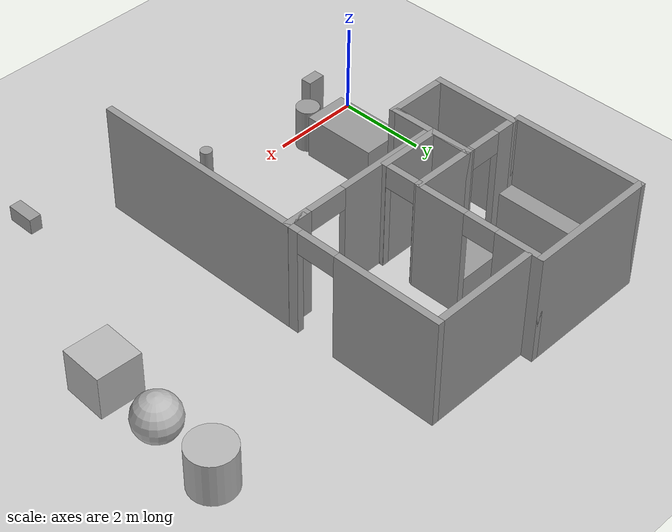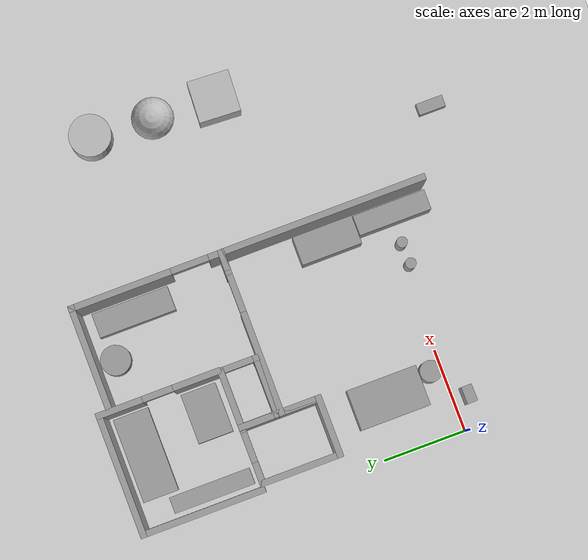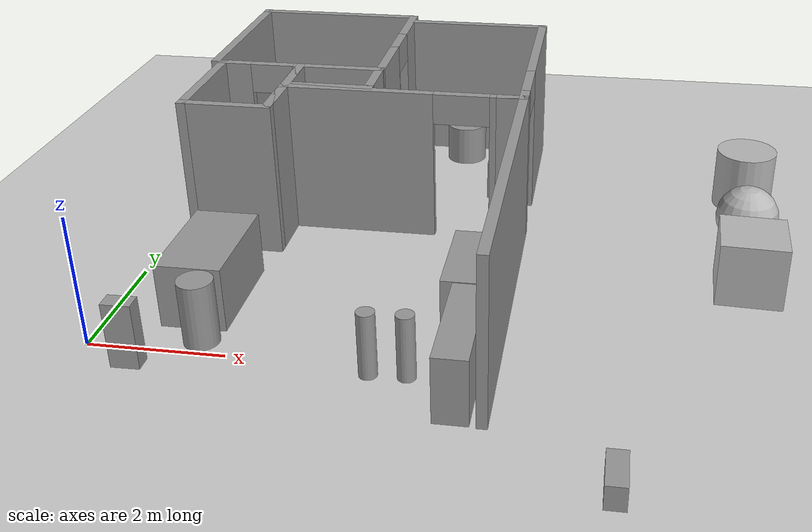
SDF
<sdf version="1.6">
 <world name="default">
  <model name="ground_plane">
   <static>1</static>
   <link name="link">
    <collision name="collision">
     <geometry><plane><normal>0 0 1</normal><size>100 100</size></plane></geometry>
     <surface><friction><ode><mu>100</mu><mu2>50</mu2></ode></friction></surface>
    </collision>
    <visual name="visual">
     <cast_shadows>0</cast_shadows>
     <geometry><plane><normal>0 0 1</normal><size>100 100</size></plane></geometry>
     <material>
      <script><uri>file://media/materials/scripts/gazebo.material</uri><name>Gazebo/Grey</name></script>
     </material>
    </visual>
   </link>
  </model>
  <model name="cma_L5">
   <pose>3.77502 1.45512 0 0 -0 0</pose>
   <link name="Wall_0">
    <collision name="Wall_0_Collision">
     <geometry><box><size>1 0.15 2.5</size></box></geometry>
     <pose>0 0 1.25 0 -0 0</pose>
    </collision>
    <visual name="Wall_0_Visual">
     <pose>0 0 1.25 0 -0 0</pose>
     <geometry><box><size>1 0.15 2.5</size></box></geometry>
     <material>
      <script><uri>file://media/materials/scripts/gazebo.material</uri><name>Gazebo/Grey</name></script>
      <ambient>1 1 1 1</ambient>
     </material>
    </visual>
    <pose>-1.925 2 0 0 -0 1.5708</pose>
   </link>
   <link name="Wall_1">
    <pose>0 2.425 0 0 -0 0</pose>
    <visual name="Wall_1_Visual_0">
     <pose>-0.7525 0 1.25 0 -0 0</pose>
     <geometry><box><size>2.495 0.15 2.5</size></box></geometry>
     <material>
      <script><uri>file://media/materials/scripts/gazebo.material</uri><name>Gazebo/Grey</name></script>
      <ambient>1 1 1 1</ambient>
     </material>
    </visual>
    <collision name="Wall_1_Collision_0">
     <geometry><box><size>2.495 0.15 2.5</size></box></geometry>
     <pose>-0.7525 0 1.25 0 -0 0</pose>
    </collision>
    <visual name="Wall_1_Visual_1">
     <pose>1.6975 0 1.25 0 -0 0</pose>
     <geometry><box><size>0.605 0.15 2.5</size></box></geometry>
     <material>
      <script><uri>file://media/materials/scripts/gazebo.material</uri><name>Gazebo/Grey</name></script>
      <ambient>1 1 1 1</ambient>
     </material>
    </visual>
    <collision name="Wall_1_Collision_1">
     <geometry><box><size>0.605 0.15 2.5</size></box></geometry>
     <pose>1.6975 0 1.25 0 -0 0</pose>
    </collision>
    <visual name="Wall_1_Visual_2">
     <pose>0.945 0 2.25 0 -0 0</pose>
     <geometry><box><size>0.9 0.15 0.5</size></box></geometry>
     <material>
      <script><uri>file://media/materials/scripts/gazebo.material</uri><name>Gazebo/Grey</name></script>
      <ambient>1 1 1 1</ambient>
     </material>
    </visual>
    <collision name="Wall_1_Collision_2">
     <geometry><box><size>0.9 0.15 0.5</size></box></geometry>
     <pose>0.945 0 2.25 0 -0 0</pose>
    </collision>
   </link>
   <link name="Wall_3">
    <collision name="Wall_3_Collision">
     <geometry><box><size>5 0.15 2.5</size></box></geometry>
     <pose>0 0 1.25 0 -0 0</pose>
    </collision>
    <visual name="Wall_3_Visual">
     <pose>0 0 1.25 0 -0 0</pose>
     <geometry><box><size>5 0.15 2.5</size></box></geometry>
     <material>
      <script><uri>file://media/materials/scripts/gazebo.material</uri><name>Gazebo/Grey</name></script>
      <ambient>1 1 1 1</ambient>
     </material>
    </visual>
    <pose>1.925 0 0 0 0 -1.5708</pose>
   </link>
   <static>1</static>
  </model>
  <model name="cma_dispensa">
   <pose>2.52584 4.40119 0 0 -0 0</pose>
   <link name="Wall_5">
    <collision name="Wall_5_Collision">
     <geometry><box><size>1 0.15 2.5</size></box></geometry>
     <pose>0 0 1.25 0 -0 0</pose>
    </collision>
    <visual name="Wall_5_Visual">
     <pose>0 0 1.25 0 -0 0</pose>
     <geometry><box><size>1 0.15 2.5</size></box></geometry>
     <material>
      <script><uri>file://media/materials/scripts/gazebo.material</uri><name>Gazebo/Grey</name></script>
      <ambient>1 1 1 1</ambient>
     </material>
    </visual>
    <pose>-0.675 0 0 0 -0 1.5708</pose>
   </link>
   <link name="Wall_6">
    <collision name="Wall_6_Collision">
     <geometry><box><size>1.5 0.15 2.5</size></box></geometry>
     <pose>0 0 1.25 0 -0 0</pose>
    </collision>
    <visual name="Wall_6_Visual">
     <pose>0 0 1.25 0 -0 0</pose>
     <geometry><box><size>1.5 0.15 2.5</size></box></geometry>
     <material>
      <script><uri>file://media/materials/scripts/gazebo.material</uri><name>Gazebo/Grey</name></script>
      <ambient>1 1 1 1</ambient>
     </material>
    </visual>
    <pose>0 0.425 0 0 -0 0</pose>
   </link>
   <link name="Wall_7">
    <pose>0.675 0 0 0 0 -1.5708</pose>
    <visual name="Wall_7_Visual_0">
     <pose>-0.4275 0 1.25 0 -0 0</pose>
     <geometry><box><size>0.145 0.15 2.5</size></box></geometry>
     <material>
      <script><uri>file://media/materials/scripts/gazebo.material</uri><name>Gazebo/Grey</name></script>
      <ambient>1 1 1 1</ambient>
     </material>
    </visual>
    <collision name="Wall_7_Collision_0">
     <geometry><box><size>0.145 0.15 2.5</size></box></geometry>
     <pose>-0.4275 0 1.25 0 -0 0</pose>
    </collision>
    <visual name="Wall_7_Visual_1">
     <pose>0.4225 0 1.25 0 -0 0</pose>
     <geometry><box><size>0.155 0.15 2.5</size></box></geometry>
     <material>
      <script><uri>file://media/materials/scripts/gazebo.material</uri><name>Gazebo/Grey</name></script>
      <ambient>1 1 1 1</ambient>
     </material>
    </visual>
    <collision name="Wall_7_Collision_1">
     <geometry><box><size>0.155 0.15 2.5</size></box></geometry>
     <pose>0.4225 0 1.25 0 -0 0</pose>
    </collision>
    <visual name="Wall_7_Visual_2">
     <pose>-0.005 0 2.25 0 -0 0</pose>
     <geometry><box><size>0.7 0.15 0.5</size></box></geometry>
     <material>
      <script><uri>file://media/materials/scripts/gazebo.material</uri><name>Gazebo/Grey</name></script>
      <ambient>1 1 1 1</ambient>
     </material>
    </visual>
    <collision name="Wall_7_Collision_2">
     <geometry><box><size>0.7 0.15 0.5</size></box></geometry>
     <pose>-0.005 0 2.25 0 -0 0</pose>
    </collision>
   </link>
   <link name="Wall_8">
    <collision name="Wall_8_Collision">
     <geometry><box><size>1.5 0.15 2.5</size></box></geometry>
     <pose>0 0 1.25 0 -0 0</pose>
    </collision>
    <visual name="Wall_8_Visual">
     <pose>0 0 1.25 0 -0 0</pose>
     <geometry><box><size>1.5 0.15 2.5</size></box></geometry>
     <material>
      <script><uri>file://media/materials/scripts/gazebo.material</uri><name>Gazebo/Grey</name></script>
      <ambient>1 1 1 1</ambient>
     </material>
    </visual>
    <pose>0 -0.425 0 0 -0 3.14159</pose>
   </link>
   <static>1</static>
  </model>
  <model name="cma_banheiro_e">
   <pose>1.18358 3.89879 0 0 -0 0</pose>
   <link name="Wall_10">
    <collision name="Wall_10_Collision">
     <geometry><box><size>1.5 0.15 2.5</size></box></geometry>
     <pose>0 0 1.25 0 -0 0</pose>
    </collision>
    <visual name="Wall_10_Visual">
     <pose>0 0 1.25 0 -0 0</pose>
     <geometry><box><size>1.5 0.15 2.5</size></box></geometry>
     <material>
      <script><uri>file://media/materials/scripts/gazebo.material</uri><name>Gazebo/Grey</name></script>
      <ambient>1 1 1 1</ambient>
     </material>
    </visual>
    <pose>0 -0.925 0 0 -0 3.14159</pose>
   </link>
   <link name="Wall_11">
    <collision name="Wall_11_Collision">
     <geometry><box><size>2 0.15 2.5</size></box></geometry>
     <pose>0 0 1.25 0 -0 0</pose>
    </collision>
    <visual name="Wall_11_Visual">
     <pose>0 0 1.25 0 -0 0</pose>
     <geometry><box><size>2 0.15 2.5</size></box></geometry>
     <material>
      <script><uri>file://media/materials/scripts/gazebo.material</uri><name>Gazebo/Grey</name></script>
      <ambient>1 1 1 1</ambient>
     </material>
    </visual>
    <pose>-0.675 0 0 0 -0 1.5708</pose>
   </link>
   <link name="Wall_12">
    <pose>0 0.925 0 0 -0 0</pose>
    <visual name="Wall_12_Visual_0">
     <pose>-0.4625 0 1.25 0 -0 0</pose>
     <geometry><box><size>0.575 0.15 2.5</size></box></geometry>
     <material>
      <script><uri>file://media/materials/scripts/gazebo.material</uri><name>Gazebo/Grey</name></script>
      <ambient>1 1 1 1</ambient>
     </material>
    </visual>
    <collision name="Wall_12_Collision_0">
     <geometry><box><size>0.575 0.15 2.5</size></box></geometry>
     <pose>-0.4625 0 1.25 0 -0 0</pose>
    </collision>
    <visual name="Wall_12_Visual_1">
     <pose>0.6475 0 1.25 0 -0 0</pose>
     <geometry><box><size>0.205 0.15 2.5</size></box></geometry>
     <material>
      <script><uri>file://media/materials/scripts/gazebo.material</uri><name>Gazebo/Grey</name></script>
      <ambient>1 1 1 1</ambient>
     </material>
    </visual>
    <collision name="Wall_12_Collision_1">
     <geometry><box><size>0.205 0.15 2.5</size></box></geometry>
     <pose>0.6475 0 1.25 0 -0 0</pose>
    </collision>
    <visual name="Wall_12_Visual_2">
     <pose>0.185 0 2.25 0 -0 0</pose>
     <geometry><box><size>0.72 0.15 0.5</size></box></geometry>
     <material>
      <script><uri>file://media/materials/scripts/gazebo.material</uri><name>Gazebo/Grey</name></script>
      <ambient>1 1 1 1</ambient>
     </material>
    </visual>
    <collision name="Wall_12_Collision_2">
     <geometry><box><size>0.72 0.15 0.5</size></box></geometry>
     <pose>0.185 0 2.25 0 -0 0</pose>
    </collision>
   </link>
   <link name="Wall_13">
    <collision name="Wall_13_Collision">
     <geometry><box><size>2 0.15 2.5</size></box></geometry>
     <pose>0 0 1.25 0 -0 0</pose>
    </collision>
    <visual name="Wall_13_Visual">
     <pose>0 0 1.25 0 -0 0</pose>
     <geometry><box><size>2 0.15 2.5</size></box></geometry>
     <material>
      <script><uri>file://media/materials/scripts/gazebo.material</uri><name>Gazebo/Grey</name></script>
      <ambient>1 1 1 1</ambient>
     </material>
    </visual>
    <pose>0.675 0 0 0 0 -1.5708</pose>
   </link>
   <static>1</static>
  </model>
  <model name="cma_qe">
   <pose>1.79561 6.31228 0 0 -0 0</pose>
   <link name="Wall_15">
    <collision name="Wall_15_Collision">
     <geometry><box><size>3 0.15 2.5</size></box></geometry>
     <pose>0 0 1.25 0 -0 0</pose>
    </collision>
    <visual name="Wall_15_Visual">
     <pose>0 0 1.25 0 -0 0</pose>
     <geometry><box><size>3 0.15 2.5</size></box></geometry>
     <material>
      <script><uri>file://media/materials/scripts/gazebo.material</uri><name>Gazebo/Grey</name></script>
      <ambient>1 1 1 1</ambient>
     </material>
    </visual>
    <pose>-1.425 0 0 0 -0 1.5708</pose>
   </link>
   <link name="Wall_16">
    <collision name="Wall_16_Collision">
     <geometry><box><size>3 0.15 2.5</size></box></geometry>
     <pose>0 0 1.25 0 -0 0</pose>
    </collision>
    <visual name="Wall_16_Visual">
     <pose>0 0 1.25 0 -0 0</pose>
     <geometry><box><size>3 0.15 2.5</size></box></geometry>
     <material>
      <script><uri>file://media/materials/scripts/gazebo.material</uri><name>Gazebo/Grey</name></script>
      <ambient>1 1 1 1</ambient>
     </material>
    </visual>
    <pose>0 1.425 0 0 -0 0</pose>
   </link>
   <link name="Wall_17">
    <pose>1.425 0 0 0 0 -1.5708</pose>
    <visual name="Wall_17_Visual_0">
     <pose>-0.945 0 1.25 0 -0 0</pose>
     <geometry><box><size>1.11 0.15 2.5</size></box></geometry>
     <material>
      <script><uri>file://media/materials/scripts/gazebo.material</uri><name>Gazebo/Grey</name></script>
      <ambient>1 1 1 1</ambient>
     </material>
    </visual>
    <collision name="Wall_17_Collision_0">
     <geometry><box><size>1.11 0.15 2.5</size></box></geometry>
     <pose>-0.945 0 1.25 0 -0 0</pose>
    </collision>
    <visual name="Wall_17_Visual_1">
     <pose>0.92 0 1.25 0 -0 0</pose>
     <geometry><box><size>1.16 0.15 2.5</size></box></geometry>
     <material>
      <script><uri>file://media/materials/scripts/gazebo.material</uri><name>Gazebo/Grey</name></script>
      <ambient>1 1 1 1</ambient>
     </material>
    </visual>
    <collision name="Wall_17_Collision_1">
     <geometry><box><size>1.16 0.15 2.5</size></box></geometry>
     <pose>0.92 0 1.25 0 -0 0</pose>
    </collision>
    <visual name="Wall_17_Visual_2">
     <pose>-0.025 0 2.25 0 -0 0</pose>
     <geometry><box><size>0.73 0.15 0.5</size></box></geometry>
     <material>
      <script><uri>file://media/materials/scripts/gazebo.material</uri><name>Gazebo/Grey</name></script>
      <ambient>1 1 1 1</ambient>
     </material>
    </visual>
    <collision name="Wall_17_Collision_2">
     <geometry><box><size>0.73 0.15 0.5</size></box></geometry>
     <pose>-0.025 0 2.25 0 -0 0</pose>
    </collision>
   </link>
   <static>1</static>
  </model>
  <model name="cma_area2">
   <pose>4.52275 5.67862 0 0 -0 0</pose>
   <link name="Wall_23">
    <collision name="Wall_23_Collision">
     <geometry><box><size>2.5 0.15 2.5</size></box></geometry>
     <pose>0 0 1.25 0 -0 0</pose>
    </collision>
    <visual name="Wall_23_Visual">
     <pose>0 0 1.25 0 -0 0</pose>
     <geometry><box><size>2.5 0.15 2.5</size></box></geometry>
     <material>
      <script><uri>file://media/materials/scripts/gazebo.material</uri><name>Gazebo/Grey</name></script>
      <ambient>1 1 1 1</ambient>
     </material>
    </visual>
    <pose>0 1.8 0 0 -0 0</pose>
   </link>
   <link name="Wall_24">
    <pose>1.175 0 0 0 0 -1.5708</pose>
    <visual name="Wall_24_Visual_0">
     <pose>-0.6425 0 1.25 0 -0 0</pose>
     <geometry><box><size>2.465 0.15 2.5</size></box></geometry>
     <material>
      <script><uri>file://media/materials/scripts/gazebo.material</uri><name>Gazebo/Grey</name></script>
      <ambient>1 1 1 1</ambient>
     </material>
    </visual>
    <collision name="Wall_24_Collision_0">
     <geometry><box><size>2.465 0.15 2.5</size></box></geometry>
     <pose>-0.6425 0 1.25 0 -0 0</pose>
    </collision>
    <visual name="Wall_24_Visual_1">
     <pose>1.6825 0 1.25 0 -0 0</pose>
     <geometry><box><size>0.385 0.15 2.5</size></box></geometry>
     <material>
      <script><uri>file://media/materials/scripts/gazebo.material</uri><name>Gazebo/Grey</name></script>
      <ambient>1 1 1 1</ambient>
     </material>
    </visual>
    <collision name="Wall_24_Collision_1">
     <geometry><box><size>0.385 0.15 2.5</size></box></geometry>
     <pose>1.6825 0 1.25 0 -0 0</pose>
    </collision>
    <visual name="Wall_24_Visual_2">
     <pose>1.04 0 2.25 0 -0 0</pose>
     <geometry><box><size>0.9 0.15 0.5</size></box></geometry>
     <material>
      <script><uri>file://media/materials/scripts/gazebo.material</uri><name>Gazebo/Grey</name></script>
      <ambient>1 1 1 1</ambient>
     </material>
    </visual>
    <collision name="Wall_24_Collision_2">
     <geometry><box><size>0.9 0.15 0.5</size></box></geometry>
     <pose>1.04 0 2.25 0 -0 0</pose>
    </collision>
   </link>
   <link name="Wall_25">
    <collision name="Wall_25_Collision">
     <geometry><box><size>0.5 0.15 2.5</size></box></geometry>
     <pose>0 0 1.25 0 -0 0</pose>
    </collision>
    <visual name="Wall_25_Visual">
     <pose>0 0 1.25 0 -0 0</pose>
     <geometry><box><size>0.5 0.15 2.5</size></box></geometry>
     <material>
      <script><uri>file://media/materials/scripts/gazebo.material</uri><name>Gazebo/Grey</name></script>
      <ambient>1 1 1 1</ambient>
     </material>
    </visual>
    <pose>1 -1.8 0 0 -0 3.14159</pose>
   </link>
   <static>1</static>
  </model>
  <model name="cma_picador_0">
   <link name="link_2">
    <pose>-0.7258 -1.69104 0 0 -0 0</pose>
    <inertial>
     <mass>0.104732</mass>
     <inertia>
      <ixx>0.00927906</ixx>
      <ixy>0</ixy>
      <ixz>0</ixz>
      <iyy>0.010243</iyy>
      <iyz>0</iyz>
      <izz>0.00206672</izz>
     </inertia>
    </inertial>
    <visual name="visual">
     <geometry><box><size>0.416688 0.25134 1</size></box></geometry>
     <material>
      <lighting>1</lighting>
      <script><uri>file://media/materials/scripts/gazebo.material</uri><name>Gazebo/Grey</name></script>
      <ambient>0.3 0.3 0.3 1</ambient>
      <diffuse>0.7 0.7 0.7 1</diffuse>
      <specular>0.01 0.01 0.01 1</specular>
      <emissive>0 0 0 1</emissive>
     </material>
    </visual>
    <collision name="collision">
     <geometry><box><size>0.416688 0.25134 1</size></box></geometry>
     <surface>
      <friction>
       <ode><mu>1</mu><mu2>1</mu2><fdir1>0 0 0</fdir1><slip1>0</slip1><slip2>0</slip2></ode>
       <torsional>
        <coefficient>1</coefficient>
        <patch_radius>0</patch_radius>
        <surface_radius>0</surface_radius>
        <use_patch_radius>1</use_patch_radius>
        <ode><slip>0</slip></ode>
       </torsional>
      </friction>
      <bounce><restitution_coefficient>0</restitution_coefficient><threshold>1e+06</threshold></bounce>
      <contact>
       <collide_without_contact>0</collide_without_contact>
       <collide_without_contact_bitmask>1</collide_without_contact_bitmask>
       <collide_bitmask>1</collide_bitmask>
       <ode>
        <soft_cfm>0</soft_cfm>
        <soft_erp>0.2</soft_erp>
        <kp>1e+13</kp>
        <kd>1</kd>
        <max_vel>0.01</max_vel>
        <min_depth>0</min_depth>
       </ode>
       <bullet>
        <split_impulse>1</split_impulse>
        <split_impulse_penetration_threshold>-0.01</split_impulse_penetration_threshold>
        <soft_cfm>0</soft_cfm>
        <soft_erp>0.2</soft_erp>
        <kp>1e+13</kp>
        <kd>1</kd>
       </bullet>
      </contact>
     </surface>
    </collision>
   </link>
   <static>0</static>
   <pose>1.46242 1.36386 0.500006 2e-06 -4e-06 0.014625</pose>
  </model>
  <model name="cma_cesto">
   <link name="link_1">
    <pose>-0.329659 -1.55494 0 0 -0 0</pose>
    <inertial>
     <mass>0.267897</mass>
     <inertia>
      <ixx>0.0268102</ixx>
      <ixy>0</ixy>
      <ixz>0</ixz>
      <iyy>0.0268102</iyy>
      <iyz>0</iyz>
      <izz>0.00897111</izz>
     </inertia>
    </inertial>
    <visual name="visual">
     <geometry><cylinder><radius>0.258792</radius><length>1</length></cylinder></geometry>
     <material>
      <lighting>1</lighting>
      <script><uri>file://media/materials/scripts/gazebo.material</uri><name>Gazebo/Grey</name></script>
      <ambient>0.3 0.3 0.3 1</ambient>
      <diffuse>0.7 0.7 0.7 1</diffuse>
      <specular>0.01 0.01 0.01 1</specular>
      <emissive>0 0 0 1</emissive>
     </material>
    </visual>
    <collision name="collision">
     <geometry><cylinder><radius>0.258792</radius><length>1</length></cylinder></geometry>
     <surface>
      <friction>
       <ode><mu>1</mu><mu2>1</mu2><fdir1>0 0 0</fdir1><slip1>0</slip1><slip2>0</slip2></ode>
       <torsional>
        <coefficient>1</coefficient>
        <patch_radius>0</patch_radius>
        <surface_radius>0</surface_radius>
        <use_patch_radius>1</use_patch_radius>
        <ode><slip>0</slip></ode>
       </torsional>
      </friction>
      <bounce><restitution_coefficient>0</restitution_coefficient><threshold>1e+06</threshold></bounce>
      <contact>
       <collide_without_contact>0</collide_without_contact>
       <collide_without_contact_bitmask>1</collide_without_contact_bitmask>
       <collide_bitmask>1</collide_bitmask>
       <ode>
        <soft_cfm>0</soft_cfm>
        <soft_erp>0.2</soft_erp>
        <kp>1e+13</kp>
        <kd>1</kd>
        <max_vel>0.01</max_vel>
        <min_depth>0</min_depth>
       </ode>
       <bullet>
        <split_impulse>1</split_impulse>
        <split_impulse_penetration_threshold>-0.01</split_impulse_penetration_threshold>
        <soft_cfm>0</soft_cfm>
        <soft_erp>0.2</soft_erp>
        <kp>1e+13</kp>
        <kd>1</kd>
       </bullet>
      </contact>
     </surface>
    </collision>
   </link>
   <static>0</static>
   <pose>1.91097 1.85863 0.499991 0 0 -0.013205</pose>
  </model>
  <model name="cma_sofa_2_lugares">
   <link name="link_0">
    <pose>-0.034013 -0.039828 0 0 -0 0</pose>
    <inertial>
     <mass>1.66071</mass>
     <inertia>
      <ixx>0.538183</ixx>
      <ixy>0</ixy>
      <ixz>0</ixz>
      <iyy>0.270519</iyy>
      <iyz>0</iyz>
      <izz>0.531915</izz>
     </inertia>
    </inertial>
    <visual name="visual">
     <geometry><box><size>0.977147 1.69968 1</size></box></geometry>
     <material>
      <lighting>1</lighting>
      <script><uri>file://media/materials/scripts/gazebo.material</uri><name>Gazebo/Grey</name></script>
      <ambient>0.3 0.3 0.3 1</ambient>
      <diffuse>0.7 0.7 0.7 1</diffuse>
      <specular>0.01 0.01 0.01 1</specular>
      <emissive>0 0 0 1</emissive>
     </material>
    </visual>
    <collision name="collision">
     <geometry><box><size>0.977147 1.69968 1</size></box></geometry>
     <surface>
      <friction>
       <ode><mu>1</mu><mu2>1</mu2><fdir1>0 0 0</fdir1><slip1>0</slip1><slip2>0</slip2></ode>
       <torsional>
        <coefficient>1</coefficient>
        <patch_radius>0</patch_radius>
        <surface_radius>0</surface_radius>
        <use_patch_radius>1</use_patch_radius>
        <ode><slip>0</slip></ode>
       </torsional>
      </friction>
      <bounce><restitution_coefficient>0</restitution_coefficient><threshold>1e+06</threshold></bounce>
      <contact>
       <collide_without_contact>0</collide_without_contact>
       <collide_without_contact_bitmask>1</collide_without_contact_bitmask>
       <collide_bitmask>1</collide_bitmask>
       <ode>
        <soft_cfm>0</soft_cfm>
        <soft_erp>0.2</soft_erp>
        <kp>1e+13</kp>
        <kd>1</kd>
        <max_vel>0.01</max_vel>
        <min_depth>0</min_depth>
       </ode>
       <bullet>
        <split_impulse>1</split_impulse>
        <split_impulse_penetration_threshold>-0.01</split_impulse_penetration_threshold>
        <soft_cfm>0</soft_cfm>
        <soft_erp>0.2</soft_erp>
        <kp>1e+13</kp>
        <kd>1</kd>
       </bullet>
      </contact>
     </surface>
    </collision>
   </link>
   <static>0</static>
   <pose>1.36372 1.47269 0.499998 4e-06 1e-06 -0.000592</pose>
  </model>
  <model name="cma_barra_70cmV">
   <link name="link_2">
    <pose>0.076239 -1e-06 0 0 0 -1.5756</pose>
    <inertial>
     <mass>0.0631368</mass>
     <inertia>
      <ixx>0.00106542</ixx>
      <ixy>0</ixy>
      <ixz>0</ixz>
      <iyy>0.00284727</iyy>
      <iyz>0</iyz>
      <izz>0.0025815</izz>
     </inertia>
    </inertial>
    <visual name="visual">
     <geometry><box><size>0.643938 0.275728 0.355737</size></box></geometry>
     <material>
      <lighting>1</lighting>
      <script><uri>file://media/materials/scripts/gazebo.material</uri><name>Gazebo/Grey</name></script>
      <ambient>0.3 0.3 0.3 1</ambient>
      <diffuse>0.7 0.7 0.7 1</diffuse>
      <specular>0.01 0.01 0.01 1</specular>
      <emissive>0 0 0 1</emissive>
     </material>
    </visual>
    <collision name="collision">
     <geometry><box><size>0.643938 0.275728 0.355737</size></box></geometry>
     <surface>
      <friction>
       <ode><mu>1</mu><mu2>1</mu2><fdir1>0 0 0</fdir1><slip1>0</slip1><slip2>0</slip2></ode>
       <torsional>
        <coefficient>1</coefficient>
        <patch_radius>0</patch_radius>
        <surface_radius>0</surface_radius>
        <use_patch_radius>1</use_patch_radius>
        <ode><slip>0</slip></ode>
       </torsional>
      </friction>
      <bounce><restitution_coefficient>0</restitution_coefficient><threshold>1e+06</threshold></bounce>
      <contact>
       <collide_without_contact>0</collide_without_contact>
       <collide_without_contact_bitmask>1</collide_without_contact_bitmask>
       <collide_bitmask>1</collide_bitmask>
       <ode>
        <soft_cfm>0</soft_cfm>
        <soft_erp>0.2</soft_erp>
        <kp>1e+13</kp>
        <kd>1</kd>
        <max_vel>0.01</max_vel>
        <min_depth>0</min_depth>
       </ode>
       <bullet>
        <split_impulse>1</split_impulse>
        <split_impulse_penetration_threshold>-0.01</split_impulse_penetration_threshold>
        <soft_cfm>0</soft_cfm>
        <soft_erp>0.2</soft_erp>
        <kp>1e+13</kp>
        <kd>1</kd>
       </bullet>
      </contact>
     </surface>
    </collision>
   </link>
   <static>0</static>
   <pose>7.29521 -1.9242 0.177866 -3e-06 2.2e-05 0.001499</pose>
  </model>
  <model name="cma_geladeira">
   <link name="link_2">
    <pose>3e-06 -4e-06 0 0 -0 0</pose>
    <inertial>
     <mass>0.994085</mass>
     <inertia>
      <ixx>0.258405</ixx>
      <ixy>0</ixy>
      <ixz>0</ixz>
      <iyy>0.121468</iyy>
      <iyz>0</iyz>
      <izz>0.214192</izz>
     </inertia>
    </inertial>
    <visual name="visual">
     <geometry><box><size>0.682844 1.45579 1</size></box></geometry>
     <material>
      <lighting>1</lighting>
      <script><uri>file://media/materials/scripts/gazebo.material</uri><name>Gazebo/Grey</name></script>
      <ambient>0.3 0.3 0.3 1</ambient>
      <diffuse>0.7 0.7 0.7 1</diffuse>
      <specular>0.01 0.01 0.01 1</specular>
      <emissive>0 0 0 1</emissive>
     </material>
    </visual>
    <collision name="collision">
     <geometry><box><size>0.682844 1.45579 1</size></box></geometry>
     <surface>
      <friction>
       <ode><mu>1</mu><mu2>1</mu2><fdir1>0 0 0</fdir1><slip1>0</slip1><slip2>0</slip2></ode>
       <torsional>
        <coefficient>1</coefficient>
        <patch_radius>0</patch_radius>
        <surface_radius>0</surface_radius>
        <use_patch_radius>1</use_patch_radius>
        <ode><slip>0</slip></ode>
       </torsional>
      </friction>
      <bounce><restitution_coefficient>0</restitution_coefficient><threshold>1e+06</threshold></bounce>
      <contact>
       <collide_without_contact>0</collide_without_contact>
       <collide_without_contact_bitmask>1</collide_without_contact_bitmask>
       <collide_bitmask>1</collide_bitmask>
       <ode>
        <soft_cfm>0</soft_cfm>
        <soft_erp>0.2</soft_erp>
        <kp>1e+13</kp>
        <kd>1</kd>
        <max_vel>0.01</max_vel>
        <min_depth>0</min_depth>
       </ode>
       <bullet>
        <split_impulse>1</split_impulse>
        <split_impulse_penetration_threshold>-0.01</split_impulse_penetration_threshold>
        <soft_cfm>0</soft_cfm>
        <soft_erp>0.2</soft_erp>
        <kp>1e+13</kp>
        <kd>1</kd>
       </bullet>
      </contact>
     </surface>
    </collision>
   </link>
   <static>0</static>
   <pose>5.2196 1.47717 0.499997 -2e-06 -5e-06 -7e-06</pose>
  </model>
  <model name="cma_armario_coz_190x40cm">
   <link name="link_3">
    <pose>-3e-06 1e-06 0 0 -0 0</pose>
    <inertial>
     <mass>0.848618</mass>
     <inertia>
      <ixx>0.28876</ixx>
      <ixy>0</ixy>
      <ixz>0</ixz>
      <iyy>0.0872359</iyy>
      <iyz>0</iyz>
      <izz>0.234559</izz>
     </inertia>
    </inertial>
    <visual name="visual">
     <geometry><box><size>0.483301 1.75592 1</size></box></geometry>
     <material>
      <lighting>1</lighting>
      <script><uri>file://media/materials/scripts/gazebo.material</uri><name>Gazebo/Grey</name></script>
      <ambient>0.3 0.3 0.3 1</ambient>
      <diffuse>0.7 0.7 0.7 1</diffuse>
      <specular>0.01 0.01 0.01 1</specular>
      <emissive>0 0 0 1</emissive>
     </material>
    </visual>
    <collision name="collision">
     <geometry><box><size>0.483301 1.75592 1</size></box></geometry>
     <surface>
      <friction>
       <ode><mu>1</mu><mu2>1</mu2><fdir1>0 0 0</fdir1><slip1>0</slip1><slip2>0</slip2></ode>
       <torsional>
        <coefficient>1</coefficient>
        <patch_radius>0</patch_radius>
        <surface_radius>0</surface_radius>
        <use_patch_radius>1</use_patch_radius>
        <ode><slip>0</slip></ode>
       </torsional>
      </friction>
      <bounce><restitution_coefficient>0</restitution_coefficient><threshold>1e+06</threshold></bounce>
      <contact>
       <collide_without_contact>0</collide_without_contact>
       <collide_without_contact_bitmask>1</collide_without_contact_bitmask>
       <collide_bitmask>1</collide_bitmask>
       <ode>
        <soft_cfm>0</soft_cfm>
        <soft_erp>0.2</soft_erp>
        <kp>1e+13</kp>
        <kd>1</kd>
        <max_vel>0.01</max_vel>
        <min_depth>0</min_depth>
       </ode>
       <bullet>
        <split_impulse>1</split_impulse>
        <split_impulse_penetration_threshold>-0.01</split_impulse_penetration_threshold>
        <soft_cfm>0</soft_cfm>
        <soft_erp>0.2</soft_erp>
        <kp>1e+13</kp>
        <kd>1</kd>
       </bullet>
      </contact>
     </surface>
    </collision>
   </link>
   <static>0</static>
   <pose>5.29766 -0.147848 0.499998 0 8e-06 -0.000687</pose>
  </model>
  <model name="cma_lixo_4">
   <link name="link_1">
    <pose>0.882962 1.81586 0.5 0 -0 0</pose>
    <inertial>
     <mass>0.0687644</mass>
     <inertia>
      <ixx>0.00602588</ixx>
      <ixy>0</ixy>
      <ixz>0</ixz>
      <iyy>0.00602588</iyy>
      <iyz>0</iyz>
      <izz>0.000591068</izz>
     </inertia>
    </inertial>
    <visual name="visual">
     <geometry><cylinder><radius>0.131112</radius><length>1</length></cylinder></geometry>
     <material>
      <lighting>1</lighting>
      <script><uri>file://media/materials/scripts/gazebo.material</uri><name>Gazebo/Grey</name></script>
      <ambient>0.3 0.3 0.3 1</ambient>
      <diffuse>0.7 0.7 0.7 1</diffuse>
      <specular>0.01 0.01 0.01 1</specular>
      <emissive>0 0 0 1</emissive>
     </material>
    </visual>
    <collision name="collision">
     <geometry><cylinder><radius>0.131112</radius><length>1</length></cylinder></geometry>
     <surface>
      <friction>
       <ode><mu>1</mu><mu2>1</mu2><fdir1>0 0 0</fdir1><slip1>0</slip1><slip2>0</slip2></ode>
       <torsional>
        <coefficient>1</coefficient>
        <patch_radius>0</patch_radius>
        <surface_radius>0</surface_radius>
        <use_patch_radius>1</use_patch_radius>
        <ode><slip>0</slip></ode>
       </torsional>
      </friction>
      <bounce><restitution_coefficient>0</restitution_coefficient><threshold>1e+06</threshold></bounce>
      <contact>
       <collide_without_contact>0</collide_without_contact>
       <collide_without_contact_bitmask>1</collide_without_contact_bitmask>
       <collide_bitmask>1</collide_bitmask>
       <ode>
        <soft_cfm>0</soft_cfm>
        <soft_erp>0.2</soft_erp>
        <kp>1e+13</kp>
        <kd>1</kd>
        <max_vel>0.01</max_vel>
        <min_depth>0</min_depth>
       </ode>
       <bullet>
        <split_impulse>1</split_impulse>
        <split_impulse_penetration_threshold>-0.01</split_impulse_penetration_threshold>
        <soft_cfm>0</soft_cfm>
        <soft_erp>0.2</soft_erp>
        <kp>1e+13</kp>
        <kd>1</kd>
       </bullet>
      </contact>
     </surface>
    </collision>
   </link>
   <static>0</static>
   <pose>3.1651 -1.9552 -2e-06 0 -0 0</pose>
  </model>
  <model name="cma_lixo_5">
   <link name="link_1">
    <pose>0.882962 1.81586 0.5 0 -0 0</pose>
    <inertial>
     <mass>0.0687644</mass>
     <inertia>
      <ixx>0.00602588</ixx>
      <ixy>0</ixy>
      <ixz>0</ixz>
      <iyy>0.00602588</iyy>
      <iyz>0</iyz>
      <izz>0.000591068</izz>
     </inertia>
    </inertial>
    <visual name="visual">
     <geometry><cylinder><radius>0.131112</radius><length>1</length></cylinder></geometry>
     <material>
      <lighting>1</lighting>
      <script><uri>file://media/materials/scripts/gazebo.material</uri><name>Gazebo/Grey</name></script>
      <ambient>0.3 0.3 0.3 1</ambient>
      <diffuse>0.7 0.7 0.7 1</diffuse>
      <specular>0.01 0.01 0.01 1</specular>
      <emissive>0 0 0 1</emissive>
     </material>
    </visual>
    <collision name="collision">
     <geometry><cylinder><radius>0.131112</radius><length>1</length></cylinder></geometry>
     <surface>
      <friction>
       <ode><mu>1</mu><mu2>1</mu2><fdir1>0 0 0</fdir1><slip1>0</slip1><slip2>0</slip2></ode>
       <torsional>
        <coefficient>1</coefficient>
        <patch_radius>0</patch_radius>
        <surface_radius>0</surface_radius>
        <use_patch_radius>1</use_patch_radius>
        <ode><slip>0</slip></ode>
       </torsional>
      </friction>
      <bounce><restitution_coefficient>0</restitution_coefficient><threshold>1e+06</threshold></bounce>
      <contact>
       <collide_without_contact>0</collide_without_contact>
       <collide_without_contact_bitmask>1</collide_without_contact_bitmask>
       <collide_bitmask>1</collide_bitmask>
       <ode>
        <soft_cfm>0</soft_cfm>
        <soft_erp>0.2</soft_erp>
        <kp>1e+13</kp>
        <kd>1</kd>
        <max_vel>0.01</max_vel>
        <min_depth>0</min_depth>
       </ode>
       <bullet>
        <split_impulse>1</split_impulse>
        <split_impulse_penetration_threshold>-0.01</split_impulse_penetration_threshold>
        <soft_cfm>0</soft_cfm>
        <soft_erp>0.2</soft_erp>
        <kp>1e+13</kp>
        <kd>1</kd>
       </bullet>
      </contact>
     </surface>
    </collision>
   </link>
   <static>0</static>
   <pose>3.69005 -1.94018 -2e-06 0 -0 0</pose>
  </model>
  <model name="cma_area_a2">
   <link name="link_1">
    <pose>-4e-06 -3e-06 0 0 -0 0</pose>
    <inertial>
     <mass>0.72139</mass>
     <inertia>
      <ixx>0.235397</ixx>
      <ixy>0</ixy>
      <ixz>0</ixz>
      <iyy>0.0468588</iyy>
      <iyz>0</iyz>
      <izz>0.229658</izz>
     </inertia>
    </inertial>
    <visual name="visual">
     <geometry><box><size>0.58481 1.86501 0.661416</size></box></geometry>
     <material>
      <lighting>1</lighting>
      <script><uri>file://media/materials/scripts/gazebo.material</uri><name>Gazebo/Grey</name></script>
      <ambient>0.3 0.3 0.3 1</ambient>
      <diffuse>0.7 0.7 0.7 1</diffuse>
      <specular>0.01 0.01 0.01 1</specular>
      <emissive>0 0 0 1</emissive>
     </material>
    </visual>
    <collision name="collision">
     <geometry><box><size>0.58481 1.86501 0.661416</size></box></geometry>
     <surface>
      <friction>
       <ode><mu>1</mu><mu2>1</mu2><fdir1>0 0 0</fdir1><slip1>0</slip1><slip2>0</slip2></ode>
       <torsional>
        <coefficient>1</coefficient>
        <patch_radius>0</patch_radius>
        <surface_radius>0</surface_radius>
        <use_patch_radius>1</use_patch_radius>
        <ode><slip>0</slip></ode>
       </torsional>
      </friction>
      <bounce><restitution_coefficient>0</restitution_coefficient><threshold>1e+06</threshold></bounce>
      <contact>
       <collide_without_contact>0</collide_without_contact>
       <collide_without_contact_bitmask>1</collide_without_contact_bitmask>
       <collide_bitmask>1</collide_bitmask>
       <ode>
        <soft_cfm>0</soft_cfm>
        <soft_erp>0.2</soft_erp>
        <kp>1e+13</kp>
        <kd>1</kd>
        <max_vel>0.01</max_vel>
        <min_depth>0</min_depth>
       </ode>
       <bullet>
        <split_impulse>1</split_impulse>
        <split_impulse_penetration_threshold>-0.01</split_impulse_penetration_threshold>
        <soft_cfm>0</soft_cfm>
        <soft_erp>0.2</soft_erp>
        <kp>1e+13</kp>
        <kd>1</kd>
       </bullet>
      </contact>
     </surface>
    </collision>
   </link>
   <static>0</static>
   <pose>5.25621 6.23248 0.330708 0 -0 1e-06</pose>
  </model>
  <model name="cma_area_lixo">
   <link name="link_0">
    <pose>-2e-06 -0 0 0 -0 0</pose>
    <inertial>
     <mass>0.353138</mass>
     <inertia>
      <ixx>0.0252978</ixx>
      <ixy>0</ixy>
      <ixz>0</ixz>
      <iyy>0.0252978</iyy>
      <iyz>0</iyz>
      <izz>0.0226035</izz>
     </inertia>
    </inertial>
    <visual name="visual">
     <geometry><cylinder><radius>0.357788</radius><length>0.689638</length></cylinder></geometry>
     <material>
      <lighting>1</lighting>
      <script><uri>file://media/materials/scripts/gazebo.material</uri><name>Gazebo/Grey</name></script>
      <ambient>0.3 0.3 0.3 1</ambient>
      <diffuse>0.7 0.7 0.7 1</diffuse>
      <specular>0.01 0.01 0.01 1</specular>
      <emissive>0 0 0 1</emissive>
     </material>
    </visual>
    <collision name="collision">
     <geometry><cylinder><radius>0.357788</radius><length>0.689638</length></cylinder></geometry>
     <surface>
      <friction>
       <ode><mu>1</mu><mu2>1</mu2><fdir1>0 0 0</fdir1><slip1>0</slip1><slip2>0</slip2></ode>
       <torsional>
        <coefficient>1</coefficient>
        <patch_radius>0</patch_radius>
        <surface_radius>0</surface_radius>
        <use_patch_radius>1</use_patch_radius>
        <ode><slip>0</slip></ode>
       </torsional>
      </friction>
      <bounce><restitution_coefficient>0</restitution_coefficient><threshold>1e+06</threshold></bounce>
      <contact>
       <collide_without_contact>0</collide_without_contact>
       <collide_without_contact_bitmask>1</collide_without_contact_bitmask>
       <collide_bitmask>1</collide_bitmask>
       <ode>
        <soft_cfm>0</soft_cfm>
        <soft_erp>0.2</soft_erp>
        <kp>1e+13</kp>
        <kd>1</kd>
        <max_vel>0.01</max_vel>
        <min_depth>0</min_depth>
       </ode>
       <bullet>
        <split_impulse>1</split_impulse>
        <split_impulse_penetration_threshold>-0.01</split_impulse_penetration_threshold>
        <soft_cfm>0</soft_cfm>
        <soft_erp>0.2</soft_erp>
        <kp>1e+13</kp>
        <kd>1</kd>
       </bullet>
      </contact>
     </surface>
    </collision>
   </link>
   <static>0</static>
   <pose>4.35576 7.00999 0.344816 3e-06 -0 0</pose>
  </model>
  <model name="cma_emp_a1">
   <link name="link_0">
    <pose>-2e-06 -4e-06 0 0 -0 0</pose>
    <inertial>
     <mass>0.792994</mass>
     <inertia>
      <ixx>0.0626161</ixx>
      <ixy>0</ixy>
      <ixz>0</ixz>
      <iyy>0.287022</iyy>
      <iyz>0</iyz>
      <izz>0.322615</izz>
     </inertia>
    </inertial>
    <visual name="visual">
     <geometry><box><size>2.03443 0.862015 0.45218</size></box></geometry>
     <material>
      <lighting>1</lighting>
      <script><uri>file://media/materials/scripts/gazebo.material</uri><name>Gazebo/Grey</name></script>
      <ambient>0.3 0.3 0.3 1</ambient>
      <diffuse>0.7 0.7 0.7 1</diffuse>
      <specular>0.01 0.01 0.01 1</specular>
      <emissive>0 0 0 1</emissive>
     </material>
    </visual>
    <collision name="collision">
     <geometry><box><size>2.03443 0.862015 0.45218</size></box></geometry>
     <surface>
      <friction>
       <ode><mu>1</mu><mu2>1</mu2><fdir1>0 0 0</fdir1><slip1>0</slip1><slip2>0</slip2></ode>
       <torsional>
        <coefficient>1</coefficient>
        <patch_radius>0</patch_radius>
        <surface_radius>0</surface_radius>
        <use_patch_radius>1</use_patch_radius>
        <ode><slip>0</slip></ode>
       </torsional>
      </friction>
      <bounce><restitution_coefficient>0</restitution_coefficient><threshold>1e+06</threshold></bounce>
      <contact>
       <collide_without_contact>0</collide_without_contact>
       <collide_without_contact_bitmask>1</collide_without_contact_bitmask>
       <collide_bitmask>1</collide_bitmask>
       <ode>
        <soft_cfm>0</soft_cfm>
        <soft_erp>0.2</soft_erp>
        <kp>1e+13</kp>
        <kd>1</kd>
        <max_vel>0.01</max_vel>
        <min_depth>0</min_depth>
       </ode>
       <bullet>
        <split_impulse>1</split_impulse>
        <split_impulse_penetration_threshold>-0.01</split_impulse_penetration_threshold>
        <soft_cfm>0</soft_cfm>
        <soft_erp>0.2</soft_erp>
        <kp>1e+13</kp>
        <kd>1</kd>
       </bullet>
      </contact>
     </surface>
    </collision>
   </link>
   <static>0</static>
   <pose>2.06895 7.13223 0.226085 -1.2e-05 0 0</pose>
  </model>
  <model name="cma_emp_a2">
   <link name="link_1">
    <pose>-2e-06 -3e-06 0 0 -0 0</pose>
    <inertial>
     <mass>0.673659</mass>
     <inertia>
      <ixx>0.0649818</ixx>
      <ixy>0</ixy>
      <ixz>0</ixz>
      <iyy>0.105429</iyy>
      <iyz>0</iyz>
      <izz>0.121244</izz>
     </inertia>
    </inertial>
    <visual name="visual">
     <geometry><box><size>1.20005 0.848307 0.661741</size></box></geometry>
     <material>
      <lighting>1</lighting>
      <script><uri>file://media/materials/scripts/gazebo.material</uri><name>Gazebo/Grey</name></script>
      <ambient>0.3 0.3 0.3 1</ambient>
      <diffuse>0.7 0.7 0.7 1</diffuse>
      <specular>0.01 0.01 0.01 1</specular>
      <emissive>0 0 0 1</emissive>
     </material>
    </visual>
    <collision name="collision">
     <geometry><box><size>1.20005 0.848307 0.661741</size></box></geometry>
     <surface>
      <friction>
       <ode><mu>1</mu><mu2>1</mu2><fdir1>0 0 0</fdir1><slip1>0</slip1><slip2>0</slip2></ode>
       <torsional>
        <coefficient>1</coefficient>
        <patch_radius>0</patch_radius>
        <surface_radius>0</surface_radius>
        <use_patch_radius>1</use_patch_radius>
        <ode><slip>0</slip></ode>
       </torsional>
      </friction>
      <bounce><restitution_coefficient>0</restitution_coefficient><threshold>1e+06</threshold></bounce>
      <contact>
       <collide_without_contact>0</collide_without_contact>
       <collide_without_contact_bitmask>1</collide_without_contact_bitmask>
       <collide_bitmask>1</collide_bitmask>
       <ode>
        <soft_cfm>0</soft_cfm>
        <soft_erp>0.2</soft_erp>
        <kp>1e+13</kp>
        <kd>1</kd>
        <max_vel>0.01</max_vel>
        <min_depth>0</min_depth>
       </ode>
       <bullet>
        <split_impulse>1</split_impulse>
        <split_impulse_penetration_threshold>-0.01</split_impulse_penetration_threshold>
        <soft_cfm>0</soft_cfm>
        <soft_erp>0.2</soft_erp>
        <kp>1e+13</kp>
        <kd>1</kd>
       </bullet>
      </contact>
     </surface>
    </collision>
   </link>
   <static>0</static>
   <pose>2.47376 5.46593 0.33087 0 -0 0</pose>
  </model>
  <model name="cma_emp_a3">
   <link name="link_2">
    <pose>0 -3e-06 0 0 -0 0</pose>
    <inertial>
     <mass>0.770093</mass>
     <inertia>
      <ixx>0.310363</ixx>
      <ixy>0</ixy>
      <ixz>0</ixz>
      <iyy>0.0740953</iyy>
      <iyz>0</iyz>
      <izz>0.256109</izz>
     </inertia>
    </inertial>
    <visual name="visual">
     <geometry><box><size>0.393179 1.95863 1</size></box></geometry>
     <material>
      <lighting>1</lighting>
      <script><uri>file://media/materials/scripts/gazebo.material</uri><name>Gazebo/Grey</name></script>
      <ambient>0.3 0.3 0.3 1</ambient>
      <diffuse>0.7 0.7 0.7 1</diffuse>
      <specular>0.01 0.01 0.01 1</specular>
      <emissive>0 0 0 1</emissive>
     </material>
    </visual>
    <collision name="collision">
     <geometry><box><size>0.393179 1.95863 1</size></box></geometry>
     <surface>
      <friction>
       <ode><mu>1</mu><mu2>1</mu2><fdir1>0 0 0</fdir1><slip1>0</slip1><slip2>0</slip2></ode>
       <torsional>
        <coefficient>1</coefficient>
        <patch_radius>0</patch_radius>
        <surface_radius>0</surface_radius>
        <use_patch_radius>1</use_patch_radius>
        <ode><slip>0</slip></ode>
       </torsional>
      </friction>
      <bounce><restitution_coefficient>0</restitution_coefficient><threshold>1e+06</threshold></bounce>
      <contact>
       <collide_without_contact>0</collide_without_contact>
       <collide_without_contact_bitmask>1</collide_without_contact_bitmask>
       <collide_bitmask>1</collide_bitmask>
       <ode>
        <soft_cfm>0</soft_cfm>
        <soft_erp>0.2</soft_erp>
        <kp>1e+13</kp>
        <kd>1</kd>
        <max_vel>0.01</max_vel>
        <min_depth>0</min_depth>
       </ode>
       <bullet>
        <split_impulse>1</split_impulse>
        <split_impulse_penetration_threshold>-0.01</split_impulse_penetration_threshold>
        <soft_cfm>0</soft_cfm>
        <soft_erp>0.2</soft_erp>
        <kp>1e+13</kp>
        <kd>1</kd>
       </bullet>
      </contact>
     </surface>
    </collision>
   </link>
   <static>0</static>
   <pose>0.758445 5.97211 0.499994 5e-06 5e-06 0.000458</pose>
  </model>
  <model name="textured_shapes">
   <pose>9.33963 4.25102 0.5 0 0 -0.051275</pose>
   <link name="box">
    <pose>0 -1.5 0 0 -0 0</pose>
    <collision name="collision"><geometry><box><size>1 1 1</size></box></geometry></collision>
    <visual name="visual">
     <geometry><box><size>1 1 1</size></box></geometry>
     <material>
      <script>
       <uri>model://textured_shapes/materials/scripts</uri>
       <uri>model://textured_shapes/materials/textures</uri>
       <name>TexturedShape/Squares</name>
      </script>
     </material>
    </visual>
    <inertial>
     <inertia><ixx>1</ixx><ixy>0</ixy><ixz>0</ixz><iyy>1</iyy><iyz>0</iyz><izz>1</izz></inertia>
     <mass>1</mass>
    </inertial>
   </link>
   <link name="sphere">
    <collision name="collision"><geometry><sphere><radius>0.5</radius></sphere></geometry></collision>
    <visual name="visual">
     <geometry><sphere><radius>0.5</radius></sphere></geometry>
     <material>
      <script>
       <uri>model://textured_shapes/materials/scripts</uri>
       <uri>model://textured_shapes/materials/textures</uri>
       <name>TexturedShape/Squares</name>
      </script>
     </material>
    </visual>
    <inertial>
     <inertia><ixx>1</ixx><ixy>0</ixy><ixz>0</ixz><iyy>1</iyy><iyz>0</iyz><izz>1</izz></inertia>
     <mass>1</mass>
    </inertial>
   </link>
   <link name="cylinder">
    <pose>0 1.5 0 0 -0 0</pose>
    <collision name="collision">
     <geometry><cylinder><radius>0.5</radius><length>1</length></cylinder></geometry>
    </collision>
    <visual name="visual">
     <geometry><cylinder><radius>0.5</radius><length>1</length></cylinder></geometry>
     <material>
      <script>
       <uri>model://textured_shapes/materials/scripts</uri>
       <uri>model://textured_shapes/materials/textures</uri>
       <name>TexturedShape/Squares</name>
      </script>
     </material>
    </visual>
    <inertial>
     <inertia><ixx>1</ixx><ixy>0</ixy><ixz>0</ixz><iyy>1</iyy><iyz>0</iyz><izz>1</izz></inertia>
     <mass>1</mass>
    </inertial>
   </link>
  </model>
 </world>
</sdf>
